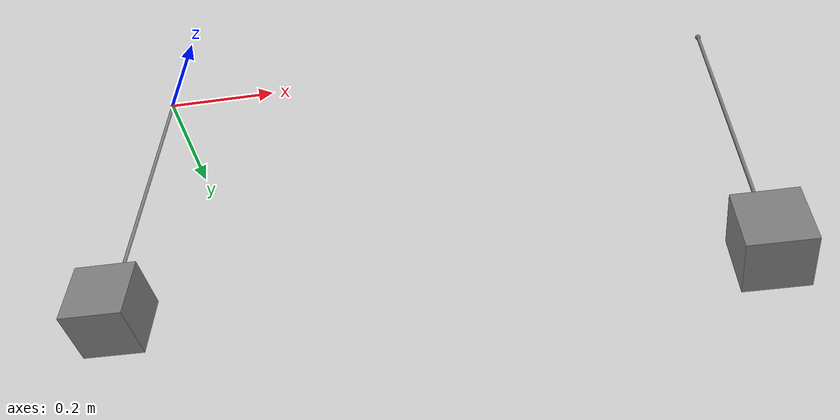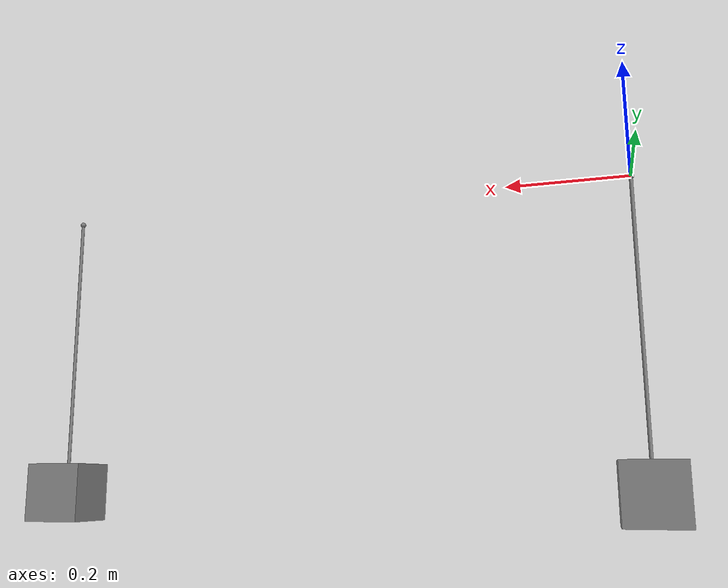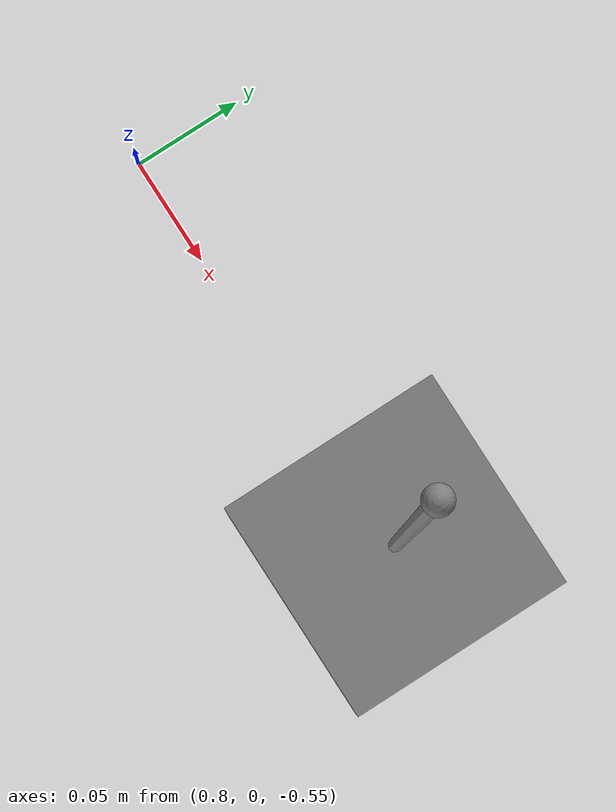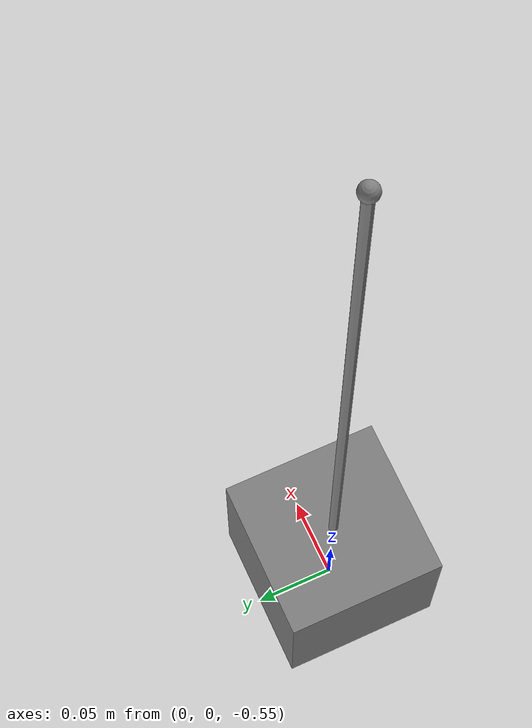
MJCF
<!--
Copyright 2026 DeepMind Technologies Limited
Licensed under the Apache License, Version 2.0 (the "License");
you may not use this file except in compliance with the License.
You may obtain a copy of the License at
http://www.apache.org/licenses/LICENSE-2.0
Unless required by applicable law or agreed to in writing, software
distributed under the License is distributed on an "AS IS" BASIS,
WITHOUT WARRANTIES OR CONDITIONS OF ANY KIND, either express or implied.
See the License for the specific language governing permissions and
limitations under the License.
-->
<mujoco>
  <option gravity="0 0 -1"/>

  <worldbody>
    <body name="fixed">
      <body name="fixedend1">
        <site name="fixedend1"/>
      </body>
      <body name="fixedend2" pos="1 0 0">
        <site name="fixedend2"/>
      </body>
    </body>
    <body name="mass1" pos="0 0 -0.5">
      <freejoint/>
      <geom type="box" size="0.05 0.05 0.05" mass="1"/>
      <body name="massend1">
        <site name="massend1"/>
      </body>
    </body>
    <body name="mass2" pos="1 0 -0.5">
      <freejoint/>
      <geom type="box" size="0.05 0.05 0.05" mass="0.5"/>
      <body name="massend2">
        <site name="massend2"/>
      </body>
    </body>
  </worldbody>

  <tendon>
    <spatial name="rope">
      <site site="massend1"/>
      <site site="fixedend1"/>
      <pulley divisor="2"/>
      <site site="fixedend2"/>
      <site site="massend2"/>
    </spatial>
  </tendon>

  <equality>
    <tendon tendon1="rope"/>
  </equality>

  <sensor>
    <force site="fixedend1" user="0 0 1"/>
    <force site="fixedend2" user="0 0 0.5"/>
    <force site="massend1" user="0 0 -1"/>
    <force site="massend2" user="0 0 -0.5"/>
  </sensor>
</mujoco>
